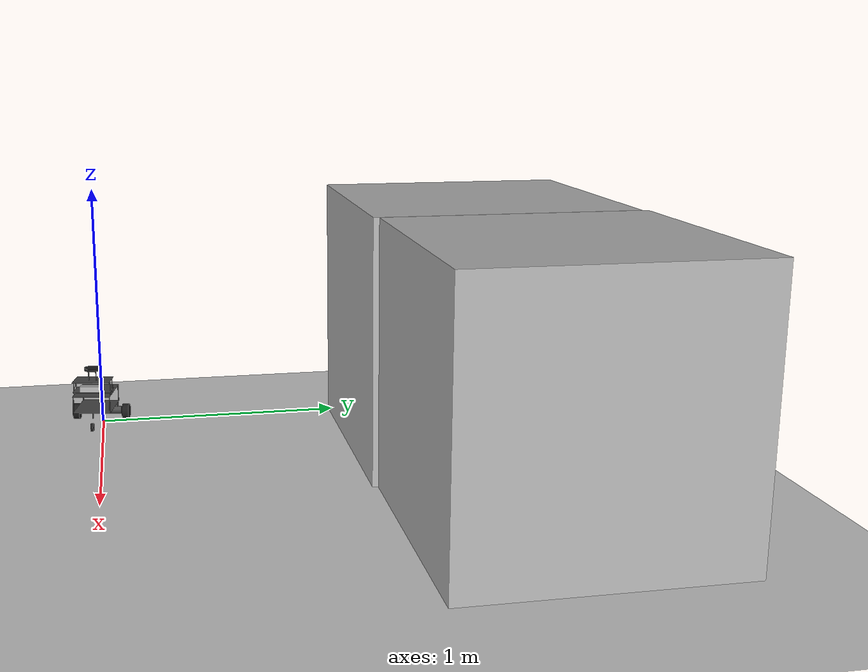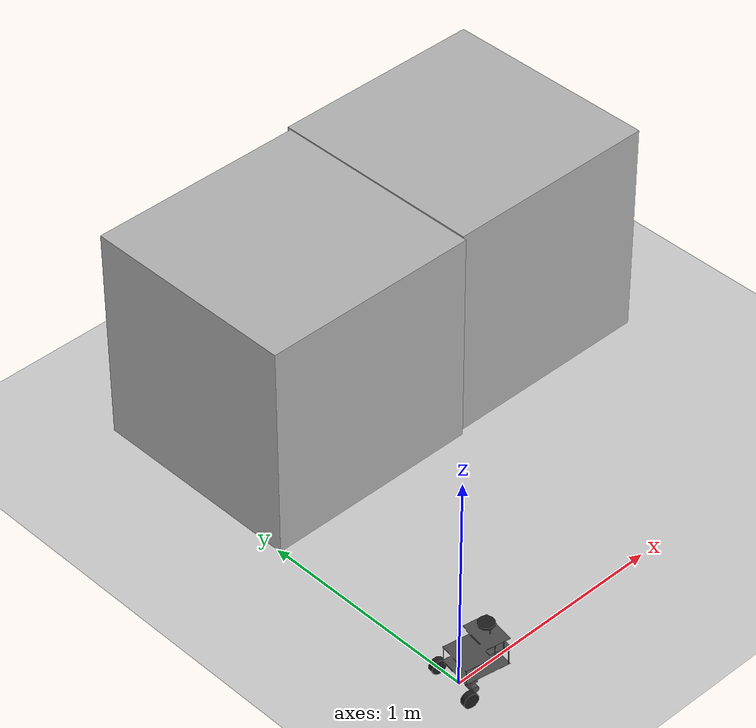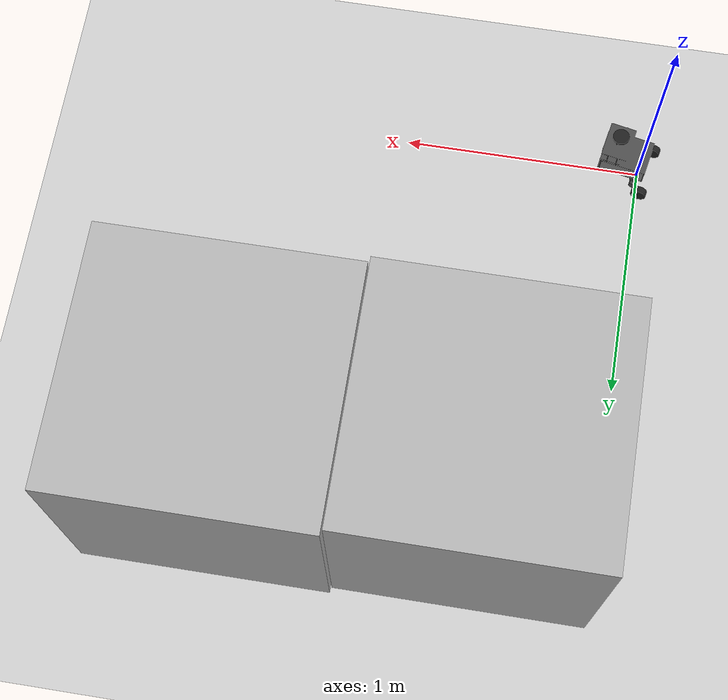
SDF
<sdf version="1.6">
 <world name="default">
  <light name="sun" type="directional">
   <pose>0 0 10 0 -0 0</pose>
   <diffuse>0.8 0.8 0.8 1</diffuse>
   <specular>0.2 0.2 0.2 1</specular>
   <attenuation>
    <range>1000</range>
    <constant>0.9</constant>
    <linear>0.01</linear>
    <quadratic>0.001</quadratic>
   </attenuation>
   <direction>-0.5 0.1 -0.9</direction>
  </light>
  <model name="ground_plane">
   <static>1</static>
   <link name="link">
    <collision name="collision">
     <geometry><plane><normal>0 0 1</normal><size>100 100</size></plane></geometry>
     <surface>
      <contact><collide_bitmask>65535</collide_bitmask></contact>
      <friction><ode><mu>100</mu><mu2>50</mu2></ode></friction>
     </surface>
    </collision>
    <visual name="visual">
     <cast_shadows>0</cast_shadows>
     <geometry><plane><normal>0 0 1</normal><size>100 100</size></plane></geometry>
     <material>
      <script><uri>file://media/materials/scripts/gazebo.material</uri><name>Gazebo/Grey</name></script>
     </material>
    </visual>
   </link>
  </model>
  <physics name="default_physics" default="0" type="ode">
   <real_time_update_rate>1000</real_time_update_rate>
   <max_step_size>0.001</max_step_size>
   <real_time_factor>1</real_time_factor>
   <ode>
    <solver>
     <type>quick</type>
     <iters>150</iters>
     <precon_iters>0</precon_iters>
     <sor>1.4</sor>
     <use_dynamic_moi_rescaling>1</use_dynamic_moi_rescaling>
    </solver>
    <constraints>
     <cfm>1e-05</cfm>
     <erp>0.2</erp>
     <contact_max_correcting_vel>2000</contact_max_correcting_vel>
     <contact_surface_layer>0.01</contact_surface_layer>
    </constraints>
   </ode>
  </physics>
  <model name="unit_box">
   <static>0</static>
   <pose>0.500577 1.48512 0.499826 4.6e-05 -0.000224 -0.000488</pose>
   <link name="box_link">
    <inertial>
     <mass>1</mass>
     <inertia><ixx>0.01</ixx><iyy>0.01</iyy><izz>0.01</izz><ixy>0</ixy><ixz>0</ixz><iyz>0</iyz></inertia>
    </inertial>
    <collision name="box_collision">
     <geometry><box><size>1 1 1</size></box></geometry>
     <surface><contact><ode><max_vel>100</max_vel><min_depth>0.001</min_depth></ode></contact></surface>
    </collision>
    <visual name="box_visual">
     <geometry><box><size>1 1 1</size></box></geometry>
     <material>
      <ambient>0.7 0.7 0.7 1</ambient>
      <diffuse>0.7 0.7 0.7 1</diffuse>
      <specular>0.7 0.7 0.7 1</specular>
     </material>
    </visual>
   </link>
  </model>
  <gravity>0 0 -9.8</gravity>
  <magnetic_field>6e-06 2.3e-05 -4.2e-05</magnetic_field>
  <atmosphere type="adiabatic"/>
  <scene><ambient>0.4 0.4 0.4 1</ambient><background>0.7 0.7 0.7 1</background><shadows>1</shadows></scene>
  <audio><device>default</device></audio>
  <spherical_coordinates>
   <surface_model>EARTH_WGS84</surface_model>
   <latitude_deg>0</latitude_deg>
   <longitude_deg>0</longitude_deg>
   <elevation>0</elevation>
   <heading_deg>0</heading_deg>
  </spherical_coordinates>
  <model name="KwjBot">
   <link name="base_footprint">
    <inertial>
     <pose>0.007979 0 0.133816 0 -0 0</pose>
     <mass>0.895311</mass>
     <inertia>
      <ixx>0.00617054</ixx>
      <ixy>0.00547122</ixy>
      <ixz>0.00327493</ixz>
      <iyy>0.00738825</iyy>
      <iyz>0.00560129</iyz>
      <izz>0.00638624</izz>
     </inertia>
    </inertial>
    <collision name="base_footprint_fixed_joint_lump__base_link_collision">
     <pose>0 0 0.065 0 -0 0</pose>
     <geometry><box><size>0.155 0.2 0.15</size></box></geometry>
    </collision>
    <collision name="base_footprint_fixed_joint_lump__camera_link_collision_1">
     <pose>0.165 0 0.1735 0 -0 0</pose>
     <geometry><box><size>0.05 0.05 0.025</size></box></geometry>
    </collision>
    <collision name="base_footprint_fixed_joint_lump__caster_front_link_collision_2">
     <pose>0.14 1e-06 -0.006 -1.57 0 0</pose>
     <geometry><cylinder><length>0.016</length><radius>0.015</radius></cylinder></geometry>
     <surface>
      <contact><ode><kp>1e+08</kp><kd>200</kd><max_vel>1</max_vel><min_depth>0.001</min_depth></ode></contact>
      <friction><ode><mu>0.1</mu><mu2>0.1</mu2></ode></friction>
     </surface>
    </collision>
    <collision name="base_footprint_fixed_joint_lump__laser_link_collision_3">
     <pose>0.095 0 0.2385 0 -0 0</pose>
     <geometry><cylinder><length>0.0105</length><radius>0.03435</radius></cylinder></geometry>
    </collision>
    <visual name="base_footprint_fixed_joint_lump__base_link_visual">
     <pose>0 0 0.065 0 -0 0</pose>
     <geometry>
      <mesh><scale>1 1 1</scale><uri>/home/user/catkin_ws/src/kwj_description/meshes/base_link.stl</uri></mesh>
     </geometry>
     <material>
      <script><name>Gazebo/DarkGrey</name><uri>file://media/materials/scripts/gazebo.material</uri></script>
     </material>
    </visual>
    <visual name="base_footprint_fixed_joint_lump__camera_link_visual_1">
     <pose>0.15 0 0.18 0 -0 0</pose>
     <geometry>
      <mesh><scale>1 1 1</scale><uri>/home/user/catkin_ws/src/kwj_description/meshes/camera_gazebo.stl</uri></mesh>
     </geometry>
    </visual>
    <visual name="base_footprint_fixed_joint_lump__caster_front_link_visual_2">
     <pose>0.14 0 -0.005 3.14159 -1.57079 3e-06</pose>
     <geometry>
      <mesh><scale>1 1 1</scale><uri>/home/user/catkin_ws/src/kwj_description/meshes/caster_gazebo.stl</uri></mesh>
     </geometry>
     <material>
      <script><name>Gazebo/FlatBlack</name><uri>file://media/materials/scripts/gazebo.material</uri></script>
     </material>
    </visual>
    <visual name="base_footprint_fixed_joint_lump__laser_link_visual_3">
     <pose>0.11 0 0.245 0 -0 0</pose>
     <geometry>
      <mesh><scale>1 1 1</scale><uri>/home/user/catkin_ws/src/kwj_description/meshes/lidar_gazebo.stl</uri></mesh>
     </geometry>
     <material>
      <script><name>Gazebo/FlatBlack</name><uri>file://media/materials/scripts/gazebo.material</uri></script>
     </material>
    </visual>
    <sensor name="imu" type="imu">
     <always_on>1</always_on>
     <visualize>0</visualize>
     <pose>-0.07 0 0.065 0 -0 0</pose>
    </sensor>
    <sensor name="lds_lfcd_sensor" type="ray">
     <visualize>0</visualize>
     <update_rate>0</update_rate>
     <ray>
      <scan>
       <horizontal>
        <samples>360</samples>
        <resolution>1</resolution>
        <min_angle>-180</min_angle>
        <max_angle>180</max_angle>
       </horizontal>
       <vertical><samples>1</samples><min_angle>0</min_angle><max_angle>0</max_angle></vertical>
      </scan>
      <range><min>0.1</min><max>10</max><resolution>0.05</resolution></range>
      <noise><type>gaussian</type><mean>0</mean><stddev>0.001</stddev></noise>
     </ray>
     <plugin name="gazebo_ros_lds_lfcd_controller" filename="libgazebo_ros_laser.so">
      <topicName>scan</topicName>
      <frameName>laser_link</frameName>
      <robotNamespace>/</robotNamespace>
     </plugin>
     <pose>0.11 0 0.245 0 -0 0</pose>
    </sensor>
   </link>
   <link name="wheel_left_link">
    <pose>-0.0355 0.106 0.0135 -1.57 0 0</pose>
    <inertial>
     <mass>0.1004</mass>
     <inertia>
      <ixx>3.38002e-05</ixx>
      <ixy>0</ixy>
      <ixz>0</ixz>
      <iyy>5.6289e-05</iyy>
      <iyz>0</iyz>
      <izz>3.38002e-05</izz>
     </inertia>
    </inertial>
    <collision name="wheel_left_link_collision">
     <geometry><cylinder><length>0.026</length><radius>0.0335</radius></cylinder></geometry>
     <surface>
      <contact><ode><kp>5e+07</kp><kd>100</kd><max_vel>0.1</max_vel><min_depth>0.001</min_depth></ode></contact>
      <friction><ode><mu>0.1</mu><mu2>0.1</mu2><fdir1>1 0 0</fdir1></ode></friction>
     </surface>
    </collision>
    <visual name="wheel_left_link_visual">
     <pose>0 0 0 0 -0 1.57</pose>
     <geometry><cylinder><length>0.026</length><radius>0.0335</radius></cylinder></geometry>
     <material>
      <script><name>Gazebo/FlatBlack</name><uri>file://media/materials/scripts/gazebo.material</uri></script>
     </material>
    </visual>
   </link>
   <joint name="wheel_left_joint" type="revolute">
    <child>wheel_left_link</child>
    <parent>base_footprint</parent>
    <axis>
     <xyz>0 1 0.000796</xyz>
     <limit><lower>-1e+16</lower><upper>1e+16</upper></limit>
     <dynamics><spring_reference>0</spring_reference><spring_stiffness>0</spring_stiffness></dynamics>
     <use_parent_model_frame>1</use_parent_model_frame>
    </axis>
   </joint>
   <link name="wheel_right_link">
    <pose>-0.0355 -0.106 0.0135 -1.57 0 0</pose>
    <inertial>
     <mass>0.1004</mass>
     <inertia>
      <ixx>3.38002e-05</ixx>
      <ixy>0</ixy>
      <ixz>0</ixz>
      <iyy>5.6289e-05</iyy>
      <iyz>0</iyz>
      <izz>3.38002e-05</izz>
     </inertia>
    </inertial>
    <collision name="wheel_right_link_collision">
     <geometry><cylinder><length>0.026</length><radius>0.0335</radius></cylinder></geometry>
     <surface>
      <contact><ode><kp>5e+07</kp><kd>100</kd><max_vel>0.1</max_vel><min_depth>0.001</min_depth></ode></contact>
      <friction><ode><mu>0.1</mu><mu2>0.1</mu2><fdir1>1 0 0</fdir1></ode></friction>
     </surface>
    </collision>
    <visual name="wheel_right_link_visual">
     <pose>0 0 0 0 -0 1.57</pose>
     <geometry><cylinder><length>0.026</length><radius>0.0335</radius></cylinder></geometry>
     <material>
      <script><name>Gazebo/FlatBlack</name><uri>file://media/materials/scripts/gazebo.material</uri></script>
     </material>
    </visual>
   </link>
   <joint name="wheel_right_joint" type="revolute">
    <child>wheel_right_link</child>
    <parent>base_footprint</parent>
    <axis>
     <xyz>0 1 0.000796</xyz>
     <limit><lower>-1e+16</lower><upper>1e+16</upper></limit>
     <dynamics><spring_reference>0</spring_reference><spring_stiffness>0</spring_stiffness></dynamics>
     <use_parent_model_frame>1</use_parent_model_frame>
    </axis>
   </joint>
   <plugin name="differential_drive_controller" filename="libgazebo_ros_diff_drive.so">
    <commandTopic>cmd_vel</commandTopic>
    <odometryTopic>odom</odometryTopic>
    <odometryFrame>odom</odometryFrame>
    <odometrySource>encoder</odometrySource>
    <publishOdomTF>0</publishOdomTF>
    <robotBaseFrame>base_footprint</robotBaseFrame>
    <publishWheelTF>1</publishWheelTF>
    <publishTf>1</publishTf>
    <publishWheelJointState>1</publishWheelJointState>
    <legacyMode>0</legacyMode>
    <updateRate>5</updateRate>
    <leftJoint>wheel_left_joint</leftJoint>
    <rightJoint>wheel_right_joint</rightJoint>
    <wheelSeparation>0.212</wheelSeparation>
    <wheelDiameter>0.067</wheelDiameter>
    <wheelAcceleration>1</wheelAcceleration>
    <wheelTorque>2</wheelTorque>
    <rosDebugLevel>na</rosDebugLevel>
    <robotNamespace>/</robotNamespace>
   </plugin>
   <static>0</static>
   <plugin name="imu_plugin" filename="libgazebo_ros_imu.so">
    <alwaysOn>1</alwaysOn>
    <topicName>imu/data</topicName>
    <serviceName>imu_service</serviceName>
    <gaussianNoise>0.0</gaussianNoise>
    <updateRate>0</updateRate>
    <imu>
     <noise>
      <type>gaussian</type>
      <rate>
       <mean>0.0</mean>
       <stddev>2e-4</stddev>
       <bias_mean>0.0000075</bias_mean>
       <bias_stddev>0.0000008</bias_stddev>
      </rate>
      <accel>
       <mean>0.0</mean>
       <stddev>1.7e-2</stddev>
       <bias_mean>0.1</bias_mean>
       <bias_stddev>0.001</bias_stddev>
      </accel>
     </noise>
    </imu>
    <robotNamespace>/</robotNamespace>
    <bodyName>base_footprint</bodyName>
    <frameName>base_footprint</frameName>
    <xyzOffset>0.14 0 -0.13</xyzOffset>
    <rpyOffset>0 -0 0</rpyOffset>
   </plugin>
   <pose>8e-05 -0.012764 0.019809 -0.004289 -0.008703 -0.184357</pose>
  </model>
  <model name="unit_box_clone">
   <static>0</static>
   <pose>1.50609 1.50637 0.499978 -3.1e-05 -0 0.000661</pose>
   <link name="box_link">
    <inertial>
     <mass>1</mass>
     <inertia><ixx>0.01</ixx><iyy>0.01</iyy><izz>0.01</izz><ixy>0</ixy><ixz>0</ixz><iyz>0</iyz></inertia>
    </inertial>
    <collision name="box_collision">
     <geometry><box><size>1 1 1</size></box></geometry>
     <surface><contact><ode><max_vel>100</max_vel><min_depth>0.001</min_depth></ode></contact></surface>
    </collision>
    <visual name="box_visual">
     <geometry><box><size>1 1 1</size></box></geometry>
     <material>
      <ambient>0.7 0.7 0.7 1</ambient>
      <diffuse>0.7 0.7 0.7 1</diffuse>
      <specular>0.7 0.7 0.7 1</specular>
     </material>
    </visual>
   </link>
  </model>
 </world>
</sdf>
